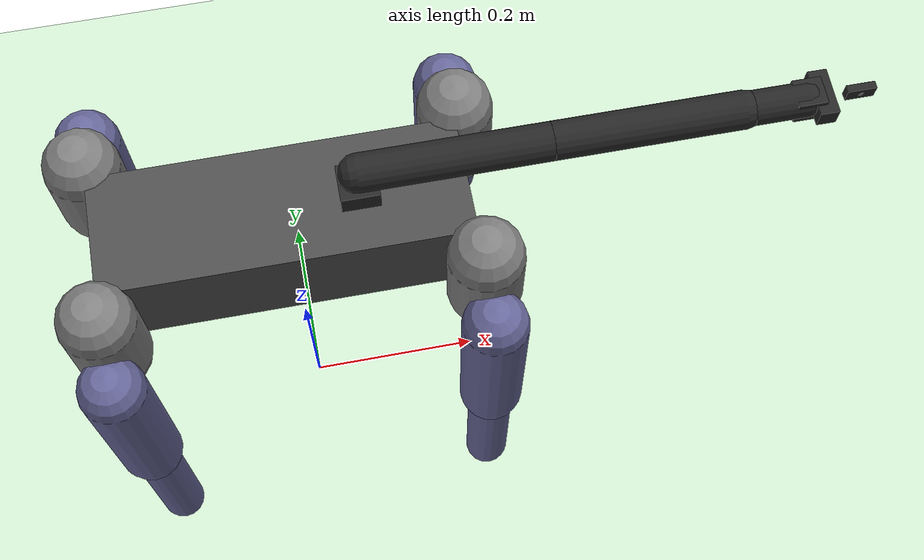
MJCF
<mujoco model="go2_scene">
  <compiler autolimits="true" angle="radian" meshdir="../../urdf/go2_unitree/dae"/>

  <option timestep="0.005" gravity="0 0 -9.81" iterations="50" solver="Newton"/>

  <default>
    <joint damping="0.1" armature="0.01"/>
    <geom condim="3" friction="1 0.005 0.0001"/>
  </default>

  <worldbody>
    <light directional="true" pos="0 0 5" dir="0 0 -1" diffuse="0.8 0.8 0.8" specular="0.2 0.2 0.2"/>
    <geom name="floor" type="plane" size="100 100 0.1" rgba="0.8 0.9 0.8 1" condim="3" friction="1.0 0.005 0.0001"/>

    <!-- GO2 floating base -->
    <body name="base" pos="0 0 0.42">
      <freejoint name="root"/>
      <inertial pos="0.021112 0 -0.005366" mass="6.921"
                diaginertia="0.02448 0.098077 0.107"/>
      <geom type="box" size="0.19 0.065 0.054" pos="0 0 0" rgba="0.3 0.3 0.3 1"/>

      <!-- FL leg -->
      <body name="FL_hip" pos="0.1934 0.0465 0">
        <joint name="FL_hip_joint" type="hinge" axis="1 0 0" range="-1.0472 1.0472" damping="0.5" armature="0.01"/>
        <inertial pos="-0.0054 0.00194 -0.000105" mass="0.678" diaginertia="0.000469246 0.00080749 0.000943748"/>
        <geom type="capsule" size="0.04 0.04" pos="0 0.04 0" rgba="0.5 0.5 0.5 1"/>
        <body name="FL_thigh" pos="0 0.0955 0">
          <joint name="FL_thigh_joint" type="hinge" axis="0 1 0" range="-1.5708 3.4907" damping="0.5" armature="0.01"/>
          <inertial pos="-0.00374 -0.0223 -0.0327" mass="1.152" diaginertia="0.00557918 0.00539517 0.000945938"/>
          <geom type="capsule" size="0.035 0.1" pos="0 0 -0.1065" rgba="0.4 0.4 0.6 1"/>
          <body name="FL_calf" pos="0 0 -0.213">
            <joint name="FL_calf_joint" type="hinge" axis="0 1 0" range="-2.7227 -0.83776" damping="0.5" armature="0.01"/>
            <inertial pos="0.00548 -0.000975 -0.115" mass="0.154" diaginertia="0.000374318 0.000375772 2.5785e-05"/>
            <geom type="capsule" size="0.025 0.1" pos="0 0 -0.1" rgba="0.4 0.4 0.6 1"/>
            <body name="FL_foot" pos="0 0 -0.213">
              <site name="FL_foot_site" pos="0 0 0" size="0.022"/>
              <geom name="FL_foot" type="sphere" size="0.022" rgba="0.2 0.2 0.2 1" condim="6"/>
              <inertial pos="0 0 0" mass="0.04" diaginertia="1e-5 1e-5 1e-5"/>
            </body>
          </body>
        </body>
      </body>

      <!-- FR leg -->
      <body name="FR_hip" pos="0.1934 -0.0465 0">
        <joint name="FR_hip_joint" type="hinge" axis="1 0 0" range="-1.0472 1.0472" damping="0.5" armature="0.01"/>
        <inertial pos="-0.0054 -0.00194 -0.000105" mass="0.678" diaginertia="0.000469246 0.00080749 0.000943748"/>
        <geom type="capsule" size="0.04 0.04" pos="0 -0.04 0" rgba="0.5 0.5 0.5 1"/>
        <body name="FR_thigh" pos="0 -0.0955 0">
          <joint name="FR_thigh_joint" type="hinge" axis="0 1 0" range="-1.5708 3.4907" damping="0.5" armature="0.01"/>
          <inertial pos="-0.00374 0.0223 -0.0327" mass="1.152" diaginertia="0.00557918 0.00539517 0.000945938"/>
          <geom type="capsule" size="0.035 0.1" pos="0 0 -0.1065" rgba="0.4 0.4 0.6 1"/>
          <body name="FR_calf" pos="0 0 -0.213">
            <joint name="FR_calf_joint" type="hinge" axis="0 1 0" range="-2.7227 -0.83776" damping="0.5" armature="0.01"/>
            <inertial pos="0.00548 0.000975 -0.115" mass="0.154" diaginertia="0.000374318 0.000375772 2.5785e-05"/>
            <geom type="capsule" size="0.025 0.1" pos="0 0 -0.1" rgba="0.4 0.4 0.6 1"/>
            <body name="FR_foot" pos="0 0 -0.213">
              <site name="FR_foot_site" pos="0 0 0" size="0.022"/>
              <geom name="FR_foot" type="sphere" size="0.022" rgba="0.2 0.2 0.2 1" condim="6"/>
              <inertial pos="0 0 0" mass="0.04" diaginertia="1e-5 1e-5 1e-5"/>
            </body>
          </body>
        </body>
      </body>

      <!-- RL leg -->
      <body name="RL_hip" pos="-0.1934 0.0465 0">
        <joint name="RL_hip_joint" type="hinge" axis="1 0 0" range="-1.0472 1.0472" damping="0.5" armature="0.01"/>
        <inertial pos="0.0054 0.00194 -0.000105" mass="0.678" diaginertia="0.000469246 0.00080749 0.000943748"/>
        <geom type="capsule" size="0.04 0.04" pos="0 0.04 0" rgba="0.5 0.5 0.5 1"/>
        <body name="RL_thigh" pos="0 0.0955 0">
          <joint name="RL_thigh_joint" type="hinge" axis="0 1 0" range="-0.5236 4.5379" damping="0.5" armature="0.01"/>
          <inertial pos="-0.00374 -0.0223 -0.0327" mass="1.152" diaginertia="0.00557918 0.00539517 0.000945938"/>
          <geom type="capsule" size="0.035 0.1" pos="0 0 -0.1065" rgba="0.4 0.4 0.6 1"/>
          <body name="RL_calf" pos="0 0 -0.213">
            <joint name="RL_calf_joint" type="hinge" axis="0 1 0" range="-2.7227 -0.83776" damping="0.5" armature="0.01"/>
            <inertial pos="0.00548 -0.000975 -0.115" mass="0.154" diaginertia="0.000374318 0.000375772 2.5785e-05"/>
            <geom type="capsule" size="0.025 0.1" pos="0 0 -0.1" rgba="0.4 0.4 0.6 1"/>
            <body name="RL_foot" pos="0 0 -0.213">
              <site name="RL_foot_site" pos="0 0 0" size="0.022"/>
              <geom name="RL_foot" type="sphere" size="0.022" rgba="0.2 0.2 0.2 1" condim="6"/>
              <inertial pos="0 0 0" mass="0.04" diaginertia="1e-5 1e-5 1e-5"/>
            </body>
          </body>
        </body>
      </body>

      <!-- RR leg -->
      <body name="RR_hip" pos="-0.1934 -0.0465 0">
        <joint name="RR_hip_joint" type="hinge" axis="1 0 0" range="-1.0472 1.0472" damping="0.5" armature="0.01"/>
        <inertial pos="0.0054 -0.00194 -0.000105" mass="0.678" diaginertia="0.000469246 0.00080749 0.000943748"/>
        <geom type="capsule" size="0.04 0.04" pos="0 -0.04 0" rgba="0.5 0.5 0.5 1"/>
        <body name="RR_thigh" pos="0 -0.0955 0">
          <joint name="RR_thigh_joint" type="hinge" axis="0 1 0" range="-0.5236 4.5379" damping="0.5" armature="0.01"/>
          <inertial pos="-0.00374 0.0223 -0.0327" mass="1.152" diaginertia="0.00557918 0.00539517 0.000945938"/>
          <geom type="capsule" size="0.035 0.1" pos="0 0 -0.1065" rgba="0.4 0.4 0.6 1"/>
          <body name="RR_calf" pos="0 0 -0.213">
            <joint name="RR_calf_joint" type="hinge" axis="0 1 0" range="-2.7227 -0.83776" damping="0.5" armature="0.01"/>
            <inertial pos="0.00548 0.000975 -0.115" mass="0.154" diaginertia="0.000374318 0.000375772 2.5785e-05"/>
            <geom type="capsule" size="0.025 0.1" pos="0 0 -0.1" rgba="0.4 0.4 0.6 1"/>
            <body name="RR_foot" pos="0 0 -0.213">
              <site name="RR_foot_site" pos="0 0 0" size="0.022"/>
              <geom name="RR_foot" type="sphere" size="0.022" rgba="0.2 0.2 0.2 1" condim="6"/>
              <inertial pos="0 0 0" mass="0.04" diaginertia="1e-5 1e-5 1e-5"/>
            </body>
          </body>
        </body>
      </body>

      <body name="arm_base" pos="0.08 0 0.057">
        <joint name="base_joint" type="hinge" axis="0 0 1" range="-1.5708 1.5708" damping="0.2" armature="0.005"/>
        <geom type="box" size="0.02 0.02 0.02" mass="0.15" rgba="0.15 0.15 0.15 1"/>
        <body name="lower_arm" pos="0 0 0.035">
          <joint name="lower_arm_joint" type="hinge" axis="0 1 0" range="-1.5708 1.5708" damping="0.2" armature="0.005"/>
          <geom type="capsule" fromto="0 0 0 0.195 0 0" size="0.02" mass="0.1" rgba="0.15 0.15 0.15 1"/>
          <body name="upper_arm" pos="0.195 0 0">
            <joint name="upper_arm_joint" type="hinge" axis="0 1 0" range="-1.5708 1.5708" damping="0.2" armature="0.005"/>
            <geom type="capsule" fromto="0 0 0 0.195 0 0" size="0.02" mass="0.1" rgba="0.15 0.15 0.15 1"/>
            <body name="wrist1" pos="0.195 0 0">
              <joint name="wrist1_joint" type="hinge" axis="0 1 0" range="-1.5708 1.5708" damping="0.1" armature="0.003"/>
              <geom type="capsule" fromto="0 0 0 0.065 0 0" size="0.018" mass="0.05" rgba="0.15 0.15 0.15 1"/>
              <body name="wrist2" pos="0.065 0 0">
                <joint name="wrist2_joint" type="hinge" axis="1 0 0" range="-1.5708 1.5708" damping="0.1" armature="0.003"/>
                <geom type="box" size="0.015 0.015 0.015" mass="0.05" rgba="0.15 0.15 0.15 1"/>
                <body name="gripper_base" pos="0.015 0 0">
                  <geom type="box" size="0.01 0.025 0.01" mass="0.03" rgba="0.15 0.15 0.15 1"/>
                  <!-- fingertip centerline, matches arm_ik.py's GRIPPER_LENGTH
                       endpoint (0.015 + 0.04 past wrist2_joint) exactly. -->
                  <site name="ee_site" pos="0.04 0 0" size="0.005"/>
                  <body name="left_finger" pos="0.04 0 0">
                    <joint name="left_finger_joint" type="slide" axis="0 1 0" range="0 0.025" damping="0.05" armature="0.001"/>
                    <geom type="box" size="0.015 0.004 0.0075" mass="0.01" rgba="0.15 0.15 0.15 1"/>
                  </body>
                  <body name="right_finger" pos="0.04 0 0">
                    <joint name="right_finger_joint" type="slide" axis="0 1 0" range="-0.025 0" damping="0.05" armature="0.001"/>
                    <geom type="box" size="0.015 0.004 0.0075" mass="0.01" rgba="0.15 0.15 0.15 1"/>
                  </body>
                </body>
              </body>
            </body>
          </body>
        </body>
      </body>

    </body>
  </worldbody>

  <actuator>
    <!-- hip joints: kp=20, kd=0.5 -->
    <position name="FL_hip"   joint="FL_hip_joint"   kp="20" kv="0.5" ctrlrange="-1.0472 1.0472"/>
    <position name="FR_hip"   joint="FR_hip_joint"   kp="20" kv="0.5" ctrlrange="-1.0472 1.0472"/>
    <position name="RL_hip"   joint="RL_hip_joint"   kp="20" kv="0.5" ctrlrange="-1.0472 1.0472"/>
    <position name="RR_hip"   joint="RR_hip_joint"   kp="20" kv="0.5" ctrlrange="-1.0472 1.0472"/>
    <!-- thigh joints -->
    <position name="FL_thigh" joint="FL_thigh_joint" kp="20" kv="0.5" ctrlrange="-1.5708 3.4907"/>
    <position name="FR_thigh" joint="FR_thigh_joint" kp="20" kv="0.5" ctrlrange="-1.5708 3.4907"/>
    <position name="RL_thigh" joint="RL_thigh_joint" kp="20" kv="0.5" ctrlrange="-0.5236 4.5379"/>
    <position name="RR_thigh" joint="RR_thigh_joint" kp="20" kv="0.5" ctrlrange="-0.5236 4.5379"/>
    <!-- calf joints -->
    <position name="FL_calf"  joint="FL_calf_joint"  kp="20" kv="0.5" ctrlrange="-2.7227 -0.83776"/>
    <position name="FR_calf"  joint="FR_calf_joint"  kp="20" kv="0.5" ctrlrange="-2.7227 -0.83776"/>
    <position name="RL_calf"  joint="RL_calf_joint"  kp="20" kv="0.5" ctrlrange="-2.7227 -0.83776"/>
    <position name="RR_calf"  joint="RR_calf_joint"  kp="20" kv="0.5" ctrlrange="-2.7227 -0.83776"/>
    <!-- Arm + gripper actuators, lighter gains than the legs (25 N*m effort
         arm joints, 10 N*m fingers per arm.urdf.xacro vs. the legs' much
         heavier drive requirements). -->
    <position name="base_joint"         joint="base_joint"         kp="15" kv="0.3"  ctrlrange="-1.5708 1.5708"/>
    <position name="lower_arm_joint"    joint="lower_arm_joint"    kp="15" kv="0.3"  ctrlrange="-1.5708 1.5708"/>
    <position name="upper_arm_joint"    joint="upper_arm_joint"    kp="15" kv="0.3"  ctrlrange="-1.5708 1.5708"/>
    <position name="wrist1_joint"       joint="wrist1_joint"       kp="10" kv="0.2"  ctrlrange="-1.5708 1.5708"/>
    <position name="wrist2_joint"       joint="wrist2_joint"       kp="10" kv="0.2"  ctrlrange="-1.5708 1.5708"/>
    <position name="left_finger_joint"  joint="left_finger_joint"  kp="5"  kv="0.05" ctrlrange="0 0.025"/>
    <position name="right_finger_joint" joint="right_finger_joint" kp="5"  kv="0.05" ctrlrange="-0.025 0"/>
  </actuator>

  <sensor>
    <framequat  name="orientation" objtype="body" objname="base"/>
    <framelinvel name="lin_vel"   objtype="body" objname="base"/>
    <frameangvel name="ang_vel"   objtype="body" objname="base"/>
    <jointpos   name="FL_hip_pos"   joint="FL_hip_joint"/>
    <jointpos   name="FL_thigh_pos" joint="FL_thigh_joint"/>
    <jointpos   name="FL_calf_pos"  joint="FL_calf_joint"/>
    <jointpos   name="FR_hip_pos"   joint="FR_hip_joint"/>
    <jointpos   name="FR_thigh_pos" joint="FR_thigh_joint"/>
    <jointpos   name="FR_calf_pos"  joint="FR_calf_joint"/>
    <jointpos   name="RL_hip_pos"   joint="RL_hip_joint"/>
    <jointpos   name="RL_thigh_pos" joint="RL_thigh_joint"/>
    <jointpos   name="RL_calf_pos"  joint="RL_calf_joint"/>
    <jointpos   name="RR_hip_pos"   joint="RR_hip_joint"/>
    <jointpos   name="RR_thigh_pos" joint="RR_thigh_joint"/>
    <jointpos   name="RR_calf_pos"  joint="RR_calf_joint"/>
    <jointvel   name="FL_hip_vel"   joint="FL_hip_joint"/>
    <jointvel   name="FL_thigh_vel" joint="FL_thigh_joint"/>
    <jointvel   name="FL_calf_vel"  joint="FL_calf_joint"/>
    <jointvel   name="FR_hip_vel"   joint="FR_hip_joint"/>
    <jointvel   name="FR_thigh_vel" joint="FR_thigh_joint"/>
    <jointvel   name="FR_calf_vel"  joint="FR_calf_joint"/>
    <jointvel   name="RL_hip_vel"   joint="RL_hip_joint"/>
    <jointvel   name="RL_thigh_vel" joint="RL_thigh_joint"/>
    <jointvel   name="RL_calf_vel"  joint="RL_calf_joint"/>
    <jointvel   name="RR_hip_vel"   joint="RR_hip_joint"/>
    <jointvel   name="RR_thigh_vel" joint="RR_thigh_joint"/>
    <jointvel   name="RR_calf_vel"  joint="RR_calf_joint"/>
    <touch name="FL_contact" site="FL_foot_site"/>
    <touch name="FR_contact" site="FR_foot_site"/>
    <touch name="RL_contact" site="RL_foot_site"/>
    <touch name="RR_contact" site="RR_foot_site"/>
    <jointpos name="base_joint_pos"         joint="base_joint"/>
    <jointpos name="lower_arm_joint_pos"    joint="lower_arm_joint"/>
    <jointpos name="upper_arm_joint_pos"    joint="upper_arm_joint"/>
    <jointpos name="wrist1_joint_pos"       joint="wrist1_joint"/>
    <jointpos name="wrist2_joint_pos"       joint="wrist2_joint"/>
    <jointpos name="left_finger_joint_pos"  joint="left_finger_joint"/>
    <jointpos name="right_finger_joint_pos" joint="right_finger_joint"/>
    <jointvel name="base_joint_vel"         joint="base_joint"/>
    <jointvel name="lower_arm_joint_vel"    joint="lower_arm_joint"/>
    <jointvel name="upper_arm_joint_vel"    joint="upper_arm_joint"/>
    <jointvel name="wrist1_joint_vel"       joint="wrist1_joint"/>
    <jointvel name="wrist2_joint_vel"       joint="wrist2_joint"/>
    <jointvel name="left_finger_joint_vel"  joint="left_finger_joint"/>
    <jointvel name="right_finger_joint_vel" joint="right_finger_joint"/>
    <!-- Gripper fingertip centerline position, relative to the body frame
         (not arm_ik.py's base_mount frame, which is this plus a fixed
         0.08/0/0.057 translation, see arm_base's pos above). -->
    <framepos name="ee_pos" objtype="site" objname="ee_site" reftype="body" refname="base"/>
  </sensor>

</mujoco>
